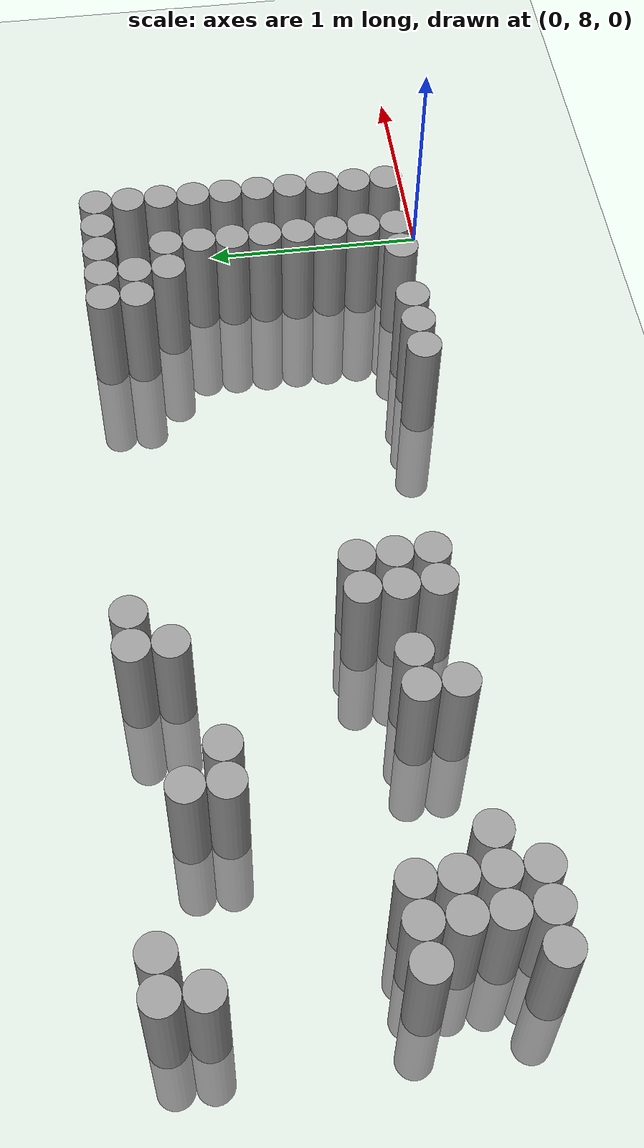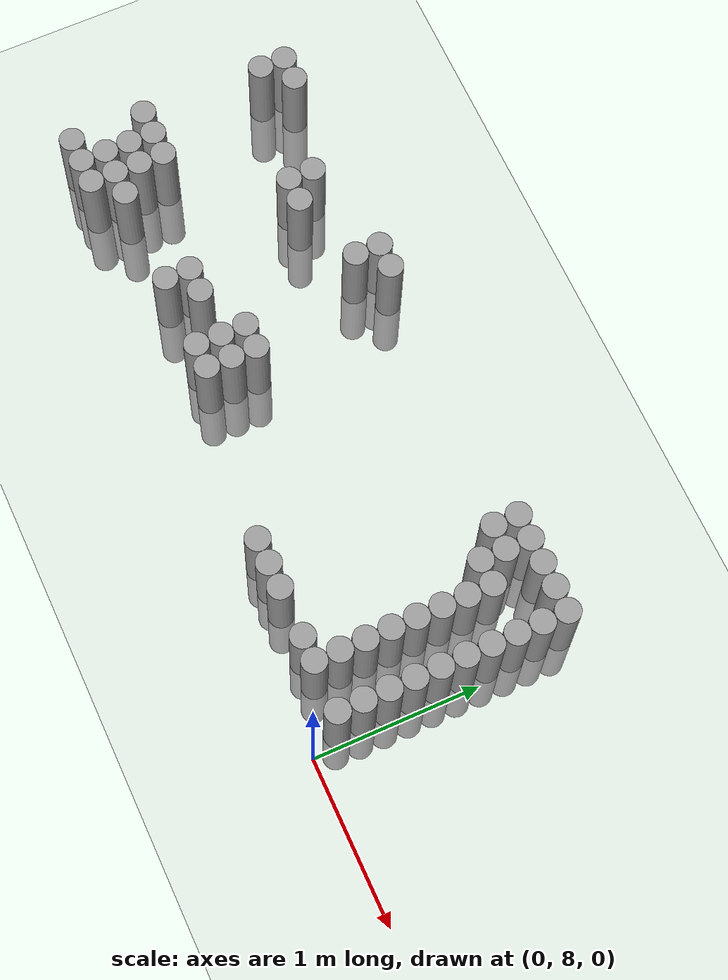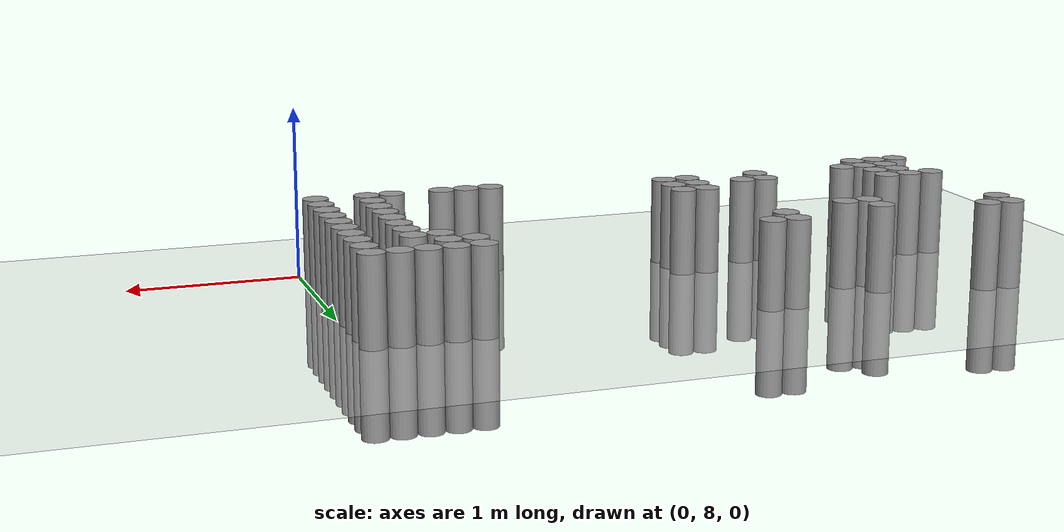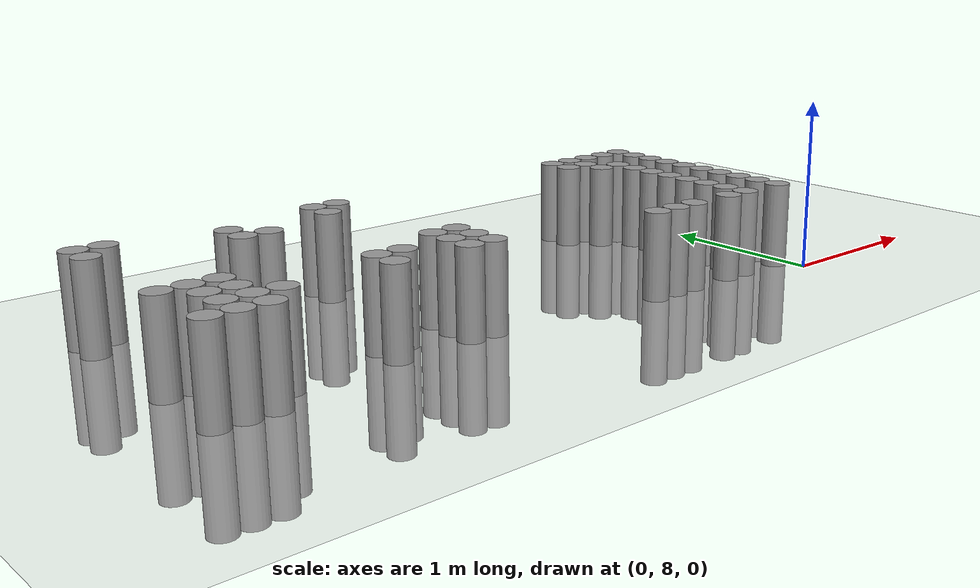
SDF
<sdf version="1.6">
 <world name="default">
  <model name="ground_plane">
   <static>1</static>
   <static>1</static>
   <link name="link">
    <collision name="collision">
     <geometry><plane><normal>0 0 1</normal><size>100 100</size></plane></geometry>
     <surface><friction><ode><mu>100</mu><mu2>50</mu2></ode></friction></surface>
    </collision>
    <visual name="visual">
     <cast_shadows>0</cast_shadows>
     <geometry><plane><normal>0 0 1</normal><size>100 100</size></plane></geometry>
     <material>
      <script><uri>file://media/materials/scripts/gazebo.material</uri><name>Gazebo/Grey</name></script>
     </material>
    </visual>
   </link>
  </model>
  <model name="unit_cylinder_160">
   <static>1</static>
   <pose>-3.825000 8.175000 0.000000 0.000000 0.000000 0.000000</pose>
   <link name="link">
    <inertial>
     <mass>1</mass>
     <inertia><ixx>0.145833</ixx><ixy>0</ixy><ixz>0</ixz><iyy>0.145833</iyy><iyz>0</iyz><izz>0.125</izz></inertia>
    </inertial>
    <collision name="collision">
     <geometry><cylinder><radius>0.075000</radius><length>1</length></cylinder></geometry>
    </collision>
    <visual name="visual">
     <geometry><cylinder><radius>0.075000</radius><length>1</length></cylinder></geometry>
     <material>
      <script><name>Gazebo/Grey</name><uri>file://media/materials/scripts/gazebo.material</uri></script>
     </material>
    </visual>
   </link>
  </model>
  <model name="unit_cylinder_161">
   <static>1</static>
   <pose>-3.825000 8.625000 0.000000 0.000000 0.000000 0.000000</pose>
   <link name="link">
    <inertial>
     <mass>1</mass>
     <inertia><ixx>0.145833</ixx><ixy>0</ixy><ixz>0</ixz><iyy>0.145833</iyy><iyz>0</iyz><izz>0.125</izz></inertia>
    </inertial>
    <collision name="collision">
     <geometry><cylinder><radius>0.075000</radius><length>1</length></cylinder></geometry>
    </collision>
    <visual name="visual">
     <geometry><cylinder><radius>0.075000</radius><length>1</length></cylinder></geometry>
     <material>
      <script><name>Gazebo/Grey</name><uri>file://media/materials/scripts/gazebo.material</uri></script>
     </material>
    </visual>
   </link>
  </model>
  <model name="unit_cylinder_162">
   <static>1</static>
   <pose>-3.825000 9.375000 0.000000 0.000000 0.000000 0.000000</pose>
   <link name="link">
    <inertial>
     <mass>1</mass>
     <inertia><ixx>0.145833</ixx><ixy>0</ixy><ixz>0</ixz><iyy>0.145833</iyy><iyz>0</iyz><izz>0.125</izz></inertia>
    </inertial>
    <collision name="collision">
     <geometry><cylinder><radius>0.075000</radius><length>1</length></cylinder></geometry>
    </collision>
    <visual name="visual">
     <geometry><cylinder><radius>0.075000</radius><length>1</length></cylinder></geometry>
     <material>
      <script><name>Gazebo/Grey</name><uri>file://media/materials/scripts/gazebo.material</uri></script>
     </material>
    </visual>
   </link>
  </model>
  <model name="unit_cylinder_163">
   <static>1</static>
   <pose>-3.825000 9.525000 0.000000 0.000000 0.000000 0.000000</pose>
   <link name="link">
    <inertial>
     <mass>1</mass>
     <inertia><ixx>0.145833</ixx><ixy>0</ixy><ixz>0</ixz><iyy>0.145833</iyy><iyz>0</iyz><izz>0.125</izz></inertia>
    </inertial>
    <collision name="collision">
     <geometry><cylinder><radius>0.075000</radius><length>1</length></cylinder></geometry>
    </collision>
    <visual name="visual">
     <geometry><cylinder><radius>0.075000</radius><length>1</length></cylinder></geometry>
     <material>
      <script><name>Gazebo/Grey</name><uri>file://media/materials/scripts/gazebo.material</uri></script>
     </material>
    </visual>
   </link>
  </model>
  <model name="unit_cylinder_166">
   <static>1</static>
   <pose>-3.675000 8.175000 0.000000 0.000000 0.000000 0.000000</pose>
   <link name="link">
    <inertial>
     <mass>1</mass>
     <inertia><ixx>0.145833</ixx><ixy>0</ixy><ixz>0</ixz><iyy>0.145833</iyy><iyz>0</iyz><izz>0.125</izz></inertia>
    </inertial>
    <collision name="collision">
     <geometry><cylinder><radius>0.075000</radius><length>1</length></cylinder></geometry>
    </collision>
    <visual name="visual">
     <geometry><cylinder><radius>0.075000</radius><length>1</length></cylinder></geometry>
     <material>
      <script><name>Gazebo/Grey</name><uri>file://media/materials/scripts/gazebo.material</uri></script>
     </material>
    </visual>
   </link>
  </model>
  <model name="unit_cylinder_167">
   <static>1</static>
   <pose>-3.675000 8.325000 0.000000 0.000000 0.000000 0.000000</pose>
   <link name="link">
    <inertial>
     <mass>1</mass>
     <inertia><ixx>0.145833</ixx><ixy>0</ixy><ixz>0</ixz><iyy>0.145833</iyy><iyz>0</iyz><izz>0.125</izz></inertia>
    </inertial>
    <collision name="collision">
     <geometry><cylinder><radius>0.075000</radius><length>1</length></cylinder></geometry>
    </collision>
    <visual name="visual">
     <geometry><cylinder><radius>0.075000</radius><length>1</length></cylinder></geometry>
     <material>
      <script><name>Gazebo/Grey</name><uri>file://media/materials/scripts/gazebo.material</uri></script>
     </material>
    </visual>
   </link>
  </model>
  <model name="unit_cylinder_168">
   <static>1</static>
   <pose>-3.675000 8.475000 0.000000 0.000000 0.000000 0.000000</pose>
   <link name="link">
    <inertial>
     <mass>1</mass>
     <inertia><ixx>0.145833</ixx><ixy>0</ixy><ixz>0</ixz><iyy>0.145833</iyy><iyz>0</iyz><izz>0.125</izz></inertia>
    </inertial>
    <collision name="collision">
     <geometry><cylinder><radius>0.075000</radius><length>1</length></cylinder></geometry>
    </collision>
    <visual name="visual">
     <geometry><cylinder><radius>0.075000</radius><length>1</length></cylinder></geometry>
     <material>
      <script><name>Gazebo/Grey</name><uri>file://media/materials/scripts/gazebo.material</uri></script>
     </material>
    </visual>
   </link>
  </model>
  <model name="unit_cylinder_169">
   <static>1</static>
   <pose>-3.675000 8.625000 0.000000 0.000000 0.000000 0.000000</pose>
   <link name="link">
    <inertial>
     <mass>1</mass>
     <inertia><ixx>0.145833</ixx><ixy>0</ixy><ixz>0</ixz><iyy>0.145833</iyy><iyz>0</iyz><izz>0.125</izz></inertia>
    </inertial>
    <collision name="collision">
     <geometry><cylinder><radius>0.075000</radius><length>1</length></cylinder></geometry>
    </collision>
    <visual name="visual">
     <geometry><cylinder><radius>0.075000</radius><length>1</length></cylinder></geometry>
     <material>
      <script><name>Gazebo/Grey</name><uri>file://media/materials/scripts/gazebo.material</uri></script>
     </material>
    </visual>
   </link>
  </model>
  <model name="unit_cylinder_170">
   <static>1</static>
   <pose>-3.675000 9.525000 0.000000 0.000000 0.000000 0.000000</pose>
   <link name="link">
    <inertial>
     <mass>1</mass>
     <inertia><ixx>0.145833</ixx><ixy>0</ixy><ixz>0</ixz><iyy>0.145833</iyy><iyz>0</iyz><izz>0.125</izz></inertia>
    </inertial>
    <collision name="collision">
     <geometry><cylinder><radius>0.075000</radius><length>1</length></cylinder></geometry>
    </collision>
    <visual name="visual">
     <geometry><cylinder><radius>0.075000</radius><length>1</length></cylinder></geometry>
     <material>
      <script><name>Gazebo/Grey</name><uri>file://media/materials/scripts/gazebo.material</uri></script>
     </material>
    </visual>
   </link>
  </model>
  <model name="unit_cylinder_173">
   <static>1</static>
   <pose>-3.525000 8.175000 0.000000 0.000000 0.000000 0.000000</pose>
   <link name="link">
    <inertial>
     <mass>1</mass>
     <inertia><ixx>0.145833</ixx><ixy>0</ixy><ixz>0</ixz><iyy>0.145833</iyy><iyz>0</iyz><izz>0.125</izz></inertia>
    </inertial>
    <collision name="collision">
     <geometry><cylinder><radius>0.075000</radius><length>1</length></cylinder></geometry>
    </collision>
    <visual name="visual">
     <geometry><cylinder><radius>0.075000</radius><length>1</length></cylinder></geometry>
     <material>
      <script><name>Gazebo/Grey</name><uri>file://media/materials/scripts/gazebo.material</uri></script>
     </material>
    </visual>
   </link>
  </model>
  <model name="unit_cylinder_174">
   <static>1</static>
   <pose>-3.525000 8.325000 0.000000 0.000000 0.000000 0.000000</pose>
   <link name="link">
    <inertial>
     <mass>1</mass>
     <inertia><ixx>0.145833</ixx><ixy>0</ixy><ixz>0</ixz><iyy>0.145833</iyy><iyz>0</iyz><izz>0.125</izz></inertia>
    </inertial>
    <collision name="collision">
     <geometry><cylinder><radius>0.075000</radius><length>1</length></cylinder></geometry>
    </collision>
    <visual name="visual">
     <geometry><cylinder><radius>0.075000</radius><length>1</length></cylinder></geometry>
     <material>
      <script><name>Gazebo/Grey</name><uri>file://media/materials/scripts/gazebo.material</uri></script>
     </material>
    </visual>
   </link>
  </model>
  <model name="unit_cylinder_175">
   <static>1</static>
   <pose>-3.525000 8.475000 0.000000 0.000000 0.000000 0.000000</pose>
   <link name="link">
    <inertial>
     <mass>1</mass>
     <inertia><ixx>0.145833</ixx><ixy>0</ixy><ixz>0</ixz><iyy>0.145833</iyy><iyz>0</iyz><izz>0.125</izz></inertia>
    </inertial>
    <collision name="collision">
     <geometry><cylinder><radius>0.075000</radius><length>1</length></cylinder></geometry>
    </collision>
    <visual name="visual">
     <geometry><cylinder><radius>0.075000</radius><length>1</length></cylinder></geometry>
     <material>
      <script><name>Gazebo/Grey</name><uri>file://media/materials/scripts/gazebo.material</uri></script>
     </material>
    </visual>
   </link>
  </model>
  <model name="unit_cylinder_176">
   <static>1</static>
   <pose>-3.525000 8.625000 0.000000 0.000000 0.000000 0.000000</pose>
   <link name="link">
    <inertial>
     <mass>1</mass>
     <inertia><ixx>0.145833</ixx><ixy>0</ixy><ixz>0</ixz><iyy>0.145833</iyy><iyz>0</iyz><izz>0.125</izz></inertia>
    </inertial>
    <collision name="collision">
     <geometry><cylinder><radius>0.075000</radius><length>1</length></cylinder></geometry>
    </collision>
    <visual name="visual">
     <geometry><cylinder><radius>0.075000</radius><length>1</length></cylinder></geometry>
     <material>
      <script><name>Gazebo/Grey</name><uri>file://media/materials/scripts/gazebo.material</uri></script>
     </material>
    </visual>
   </link>
  </model>
  <model name="unit_cylinder_177">
   <static>1</static>
   <pose>-3.375000 8.325000 0.000000 0.000000 0.000000 0.000000</pose>
   <link name="link">
    <inertial>
     <mass>1</mass>
     <inertia><ixx>0.145833</ixx><ixy>0</ixy><ixz>0</ixz><iyy>0.145833</iyy><iyz>0</iyz><izz>0.125</izz></inertia>
    </inertial>
    <collision name="collision">
     <geometry><cylinder><radius>0.075000</radius><length>1</length></cylinder></geometry>
    </collision>
    <visual name="visual">
     <geometry><cylinder><radius>0.075000</radius><length>1</length></cylinder></geometry>
     <material>
      <script><name>Gazebo/Grey</name><uri>file://media/materials/scripts/gazebo.material</uri></script>
     </material>
    </visual>
   </link>
  </model>
  <model name="unit_cylinder_178">
   <static>1</static>
   <pose>-3.075000 9.225000 0.000000 0.000000 0.000000 0.000000</pose>
   <link name="link">
    <inertial>
     <mass>1</mass>
     <inertia><ixx>0.145833</ixx><ixy>0</ixy><ixz>0</ixz><iyy>0.145833</iyy><iyz>0</iyz><izz>0.125</izz></inertia>
    </inertial>
    <collision name="collision">
     <geometry><cylinder><radius>0.075000</radius><length>1</length></cylinder></geometry>
    </collision>
    <visual name="visual">
     <geometry><cylinder><radius>0.075000</radius><length>1</length></cylinder></geometry>
     <material>
      <script><name>Gazebo/Grey</name><uri>file://media/materials/scripts/gazebo.material</uri></script>
     </material>
    </visual>
   </link>
  </model>
  <model name="unit_cylinder_179">
   <static>1</static>
   <pose>-3.075000 9.375000 0.000000 0.000000 0.000000 0.000000</pose>
   <link name="link">
    <inertial>
     <mass>1</mass>
     <inertia><ixx>0.145833</ixx><ixy>0</ixy><ixz>0</ixz><iyy>0.145833</iyy><iyz>0</iyz><izz>0.125</izz></inertia>
    </inertial>
    <collision name="collision">
     <geometry><cylinder><radius>0.075000</radius><length>1</length></cylinder></geometry>
    </collision>
    <visual name="visual">
     <geometry><cylinder><radius>0.075000</radius><length>1</length></cylinder></geometry>
     <material>
      <script><name>Gazebo/Grey</name><uri>file://media/materials/scripts/gazebo.material</uri></script>
     </material>
    </visual>
   </link>
  </model>
  <model name="unit_cylinder_180">
   <static>1</static>
   <pose>-2.925000 9.225000 0.000000 0.000000 0.000000 0.000000</pose>
   <link name="link">
    <inertial>
     <mass>1</mass>
     <inertia><ixx>0.145833</ixx><ixy>0</ixy><ixz>0</ixz><iyy>0.145833</iyy><iyz>0</iyz><izz>0.125</izz></inertia>
    </inertial>
    <collision name="collision">
     <geometry><cylinder><radius>0.075000</radius><length>1</length></cylinder></geometry>
    </collision>
    <visual name="visual">
     <geometry><cylinder><radius>0.075000</radius><length>1</length></cylinder></geometry>
     <material>
      <script><name>Gazebo/Grey</name><uri>file://media/materials/scripts/gazebo.material</uri></script>
     </material>
    </visual>
   </link>
  </model>
  <model name="unit_cylinder_181">
   <static>1</static>
   <pose>-2.775000 8.325000 0.000000 0.000000 0.000000 0.000000</pose>
   <link name="link">
    <inertial>
     <mass>1</mass>
     <inertia><ixx>0.145833</ixx><ixy>0</ixy><ixz>0</ixz><iyy>0.145833</iyy><iyz>0</iyz><izz>0.125</izz></inertia>
    </inertial>
    <collision name="collision">
     <geometry><cylinder><radius>0.075000</radius><length>1</length></cylinder></geometry>
    </collision>
    <visual name="visual">
     <geometry><cylinder><radius>0.075000</radius><length>1</length></cylinder></geometry>
     <material>
      <script><name>Gazebo/Grey</name><uri>file://media/materials/scripts/gazebo.material</uri></script>
     </material>
    </visual>
   </link>
  </model>
  <model name="unit_cylinder_182">
   <static>1</static>
   <pose>-2.775000 8.475000 0.000000 0.000000 0.000000 0.000000</pose>
   <link name="link">
    <inertial>
     <mass>1</mass>
     <inertia><ixx>0.145833</ixx><ixy>0</ixy><ixz>0</ixz><iyy>0.145833</iyy><iyz>0</iyz><izz>0.125</izz></inertia>
    </inertial>
    <collision name="collision">
     <geometry><cylinder><radius>0.075000</radius><length>1</length></cylinder></geometry>
    </collision>
    <visual name="visual">
     <geometry><cylinder><radius>0.075000</radius><length>1</length></cylinder></geometry>
     <material>
      <script><name>Gazebo/Grey</name><uri>file://media/materials/scripts/gazebo.material</uri></script>
     </material>
    </visual>
   </link>
  </model>
  <model name="unit_cylinder_183">
   <static>1</static>
   <pose>-2.625000 8.475000 0.000000 0.000000 0.000000 0.000000</pose>
   <link name="link">
    <inertial>
     <mass>1</mass>
     <inertia><ixx>0.145833</ixx><ixy>0</ixy><ixz>0</ixz><iyy>0.145833</iyy><iyz>0</iyz><izz>0.125</izz></inertia>
    </inertial>
    <collision name="collision">
     <geometry><cylinder><radius>0.075000</radius><length>1</length></cylinder></geometry>
    </collision>
    <visual name="visual">
     <geometry><cylinder><radius>0.075000</radius><length>1</length></cylinder></geometry>
     <material>
      <script><name>Gazebo/Grey</name><uri>file://media/materials/scripts/gazebo.material</uri></script>
     </material>
    </visual>
   </link>
  </model>
  <model name="unit_cylinder_184">
   <static>1</static>
   <pose>-2.475000 9.375000 0.000000 0.000000 0.000000 0.000000</pose>
   <link name="link">
    <inertial>
     <mass>1</mass>
     <inertia><ixx>0.145833</ixx><ixy>0</ixy><ixz>0</ixz><iyy>0.145833</iyy><iyz>0</iyz><izz>0.125</izz></inertia>
    </inertial>
    <collision name="collision">
     <geometry><cylinder><radius>0.075000</radius><length>1</length></cylinder></geometry>
    </collision>
    <visual name="visual">
     <geometry><cylinder><radius>0.075000</radius><length>1</length></cylinder></geometry>
     <material>
      <script><name>Gazebo/Grey</name><uri>file://media/materials/scripts/gazebo.material</uri></script>
     </material>
    </visual>
   </link>
  </model>
  <model name="unit_cylinder_185">
   <static>1</static>
   <pose>-2.475000 9.525000 0.000000 0.000000 0.000000 0.000000</pose>
   <link name="link">
    <inertial>
     <mass>1</mass>
     <inertia><ixx>0.145833</ixx><ixy>0</ixy><ixz>0</ixz><iyy>0.145833</iyy><iyz>0</iyz><izz>0.125</izz></inertia>
    </inertial>
    <collision name="collision">
     <geometry><cylinder><radius>0.075000</radius><length>1</length></cylinder></geometry>
    </collision>
    <visual name="visual">
     <geometry><cylinder><radius>0.075000</radius><length>1</length></cylinder></geometry>
     <material>
      <script><name>Gazebo/Grey</name><uri>file://media/materials/scripts/gazebo.material</uri></script>
     </material>
    </visual>
   </link>
  </model>
  <model name="unit_cylinder_186">
   <static>1</static>
   <pose>-2.325000 8.325000 0.000000 0.000000 0.000000 0.000000</pose>
   <link name="link">
    <inertial>
     <mass>1</mass>
     <inertia><ixx>0.145833</ixx><ixy>0</ixy><ixz>0</ixz><iyy>0.145833</iyy><iyz>0</iyz><izz>0.125</izz></inertia>
    </inertial>
    <collision name="collision">
     <geometry><cylinder><radius>0.075000</radius><length>1</length></cylinder></geometry>
    </collision>
    <visual name="visual">
     <geometry><cylinder><radius>0.075000</radius><length>1</length></cylinder></geometry>
     <material>
      <script><name>Gazebo/Grey</name><uri>file://media/materials/scripts/gazebo.material</uri></script>
     </material>
    </visual>
   </link>
  </model>
  <model name="unit_cylinder_187">
   <static>1</static>
   <pose>-2.325000 8.475000 0.000000 0.000000 0.000000 0.000000</pose>
   <link name="link">
    <inertial>
     <mass>1</mass>
     <inertia><ixx>0.145833</ixx><ixy>0</ixy><ixz>0</ixz><iyy>0.145833</iyy><iyz>0</iyz><izz>0.125</izz></inertia>
    </inertial>
    <collision name="collision">
     <geometry><cylinder><radius>0.075000</radius><length>1</length></cylinder></geometry>
    </collision>
    <visual name="visual">
     <geometry><cylinder><radius>0.075000</radius><length>1</length></cylinder></geometry>
     <material>
      <script><name>Gazebo/Grey</name><uri>file://media/materials/scripts/gazebo.material</uri></script>
     </material>
    </visual>
   </link>
  </model>
  <model name="unit_cylinder_188">
   <static>1</static>
   <pose>-2.325000 8.625000 0.000000 0.000000 0.000000 0.000000</pose>
   <link name="link">
    <inertial>
     <mass>1</mass>
     <inertia><ixx>0.145833</ixx><ixy>0</ixy><ixz>0</ixz><iyy>0.145833</iyy><iyz>0</iyz><izz>0.125</izz></inertia>
    </inertial>
    <collision name="collision">
     <geometry><cylinder><radius>0.075000</radius><length>1</length></cylinder></geometry>
    </collision>
    <visual name="visual">
     <geometry><cylinder><radius>0.075000</radius><length>1</length></cylinder></geometry>
     <material>
      <script><name>Gazebo/Grey</name><uri>file://media/materials/scripts/gazebo.material</uri></script>
     </material>
    </visual>
   </link>
  </model>
  <model name="unit_cylinder_189">
   <static>1</static>
   <pose>-2.325000 9.525000 0.000000 0.000000 0.000000 0.000000</pose>
   <link name="link">
    <inertial>
     <mass>1</mass>
     <inertia><ixx>0.145833</ixx><ixy>0</ixy><ixz>0</ixz><iyy>0.145833</iyy><iyz>0</iyz><izz>0.125</izz></inertia>
    </inertial>
    <collision name="collision">
     <geometry><cylinder><radius>0.075000</radius><length>1</length></cylinder></geometry>
    </collision>
    <visual name="visual">
     <geometry><cylinder><radius>0.075000</radius><length>1</length></cylinder></geometry>
     <material>
      <script><name>Gazebo/Grey</name><uri>file://media/materials/scripts/gazebo.material</uri></script>
     </material>
    </visual>
   </link>
  </model>
  <model name="unit_cylinder_190">
   <static>1</static>
   <pose>-2.175000 8.325000 0.000000 0.000000 0.000000 0.000000</pose>
   <link name="link">
    <inertial>
     <mass>1</mass>
     <inertia><ixx>0.145833</ixx><ixy>0</ixy><ixz>0</ixz><iyy>0.145833</iyy><iyz>0</iyz><izz>0.125</izz></inertia>
    </inertial>
    <collision name="collision">
     <geometry><cylinder><radius>0.075000</radius><length>1</length></cylinder></geometry>
    </collision>
    <visual name="visual">
     <geometry><cylinder><radius>0.075000</radius><length>1</length></cylinder></geometry>
     <material>
      <script><name>Gazebo/Grey</name><uri>file://media/materials/scripts/gazebo.material</uri></script>
     </material>
    </visual>
   </link>
  </model>
  <model name="unit_cylinder_191">
   <static>1</static>
   <pose>-2.175000 8.475000 0.000000 0.000000 0.000000 0.000000</pose>
   <link name="link">
    <inertial>
     <mass>1</mass>
     <inertia><ixx>0.145833</ixx><ixy>0</ixy><ixz>0</ixz><iyy>0.145833</iyy><iyz>0</iyz><izz>0.125</izz></inertia>
    </inertial>
    <collision name="collision">
     <geometry><cylinder><radius>0.075000</radius><length>1</length></cylinder></geometry>
    </collision>
    <visual name="visual">
     <geometry><cylinder><radius>0.075000</radius><length>1</length></cylinder></geometry>
     <material>
      <script><name>Gazebo/Grey</name><uri>file://media/materials/scripts/gazebo.material</uri></script>
     </material>
    </visual>
   </link>
  </model>
  <model name="unit_cylinder_192">
   <static>1</static>
   <pose>-2.175000 8.625000 0.000000 0.000000 0.000000 0.000000</pose>
   <link name="link">
    <inertial>
     <mass>1</mass>
     <inertia><ixx>0.145833</ixx><ixy>0</ixy><ixz>0</ixz><iyy>0.145833</iyy><iyz>0</iyz><izz>0.125</izz></inertia>
    </inertial>
    <collision name="collision">
     <geometry><cylinder><radius>0.075000</radius><length>1</length></cylinder></geometry>
    </collision>
    <visual name="visual">
     <geometry><cylinder><radius>0.075000</radius><length>1</length></cylinder></geometry>
     <material>
      <script><name>Gazebo/Grey</name><uri>file://media/materials/scripts/gazebo.material</uri></script>
     </material>
    </visual>
   </link>
  </model>
  <model name="unit_cylinder_211">
   <static>1</static>
   <pose>-1.125000 8.175000 0.000000 0.000000 0.000000 0.000000</pose>
   <link name="link">
    <inertial>
     <mass>1</mass>
     <inertia><ixx>0.145833</ixx><ixy>0</ixy><ixz>0</ixz><iyy>0.145833</iyy><iyz>0</iyz><izz>0.125</izz></inertia>
    </inertial>
    <collision name="collision">
     <geometry><cylinder><radius>0.075000</radius><length>1</length></cylinder></geometry>
    </collision>
    <visual name="visual">
     <geometry><cylinder><radius>0.075000</radius><length>1</length></cylinder></geometry>
     <material>
      <script><name>Gazebo/Grey</name><uri>file://media/materials/scripts/gazebo.material</uri></script>
     </material>
    </visual>
   </link>
  </model>
  <model name="unit_cylinder_215">
   <static>1</static>
   <pose>-0.975000 8.175000 0.000000 0.000000 0.000000 0.000000</pose>
   <link name="link">
    <inertial>
     <mass>1</mass>
     <inertia><ixx>0.145833</ixx><ixy>0</ixy><ixz>0</ixz><iyy>0.145833</iyy><iyz>0</iyz><izz>0.125</izz></inertia>
    </inertial>
    <collision name="collision">
     <geometry><cylinder><radius>0.075000</radius><length>1</length></cylinder></geometry>
    </collision>
    <visual name="visual">
     <geometry><cylinder><radius>0.075000</radius><length>1</length></cylinder></geometry>
     <material>
      <script><name>Gazebo/Grey</name><uri>file://media/materials/scripts/gazebo.material</uri></script>
     </material>
    </visual>
   </link>
  </model>
  <model name="unit_cylinder_218">
   <static>1</static>
   <pose>-0.825000 8.175000 0.000000 0.000000 0.000000 0.000000</pose>
   <link name="link">
    <inertial>
     <mass>1</mass>
     <inertia><ixx>0.145833</ixx><ixy>0</ixy><ixz>0</ixz><iyy>0.145833</iyy><iyz>0</iyz><izz>0.125</izz></inertia>
    </inertial>
    <collision name="collision">
     <geometry><cylinder><radius>0.075000</radius><length>1</length></cylinder></geometry>
    </collision>
    <visual name="visual">
     <geometry><cylinder><radius>0.075000</radius><length>1</length></cylinder></geometry>
     <material>
      <script><name>Gazebo/Grey</name><uri>file://media/materials/scripts/gazebo.material</uri></script>
     </material>
    </visual>
   </link>
  </model>
  <model name="unit_cylinder_222">
   <static>1</static>
   <pose>-0.675000 9.375000 0.000000 0.000000 0.000000 0.000000</pose>
   <link name="link">
    <inertial>
     <mass>1</mass>
     <inertia><ixx>0.145833</ixx><ixy>0</ixy><ixz>0</ixz><iyy>0.145833</iyy><iyz>0</iyz><izz>0.125</izz></inertia>
    </inertial>
    <collision name="collision">
     <geometry><cylinder><radius>0.075000</radius><length>1</length></cylinder></geometry>
    </collision>
    <visual name="visual">
     <geometry><cylinder><radius>0.075000</radius><length>1</length></cylinder></geometry>
     <material>
      <script><name>Gazebo/Grey</name><uri>file://media/materials/scripts/gazebo.material</uri></script>
     </material>
    </visual>
   </link>
  </model>
  <model name="unit_cylinder_223">
   <static>1</static>
   <pose>-0.675000 9.525000 0.000000 0.000000 0.000000 0.000000</pose>
   <link name="link">
    <inertial>
     <mass>1</mass>
     <inertia><ixx>0.145833</ixx><ixy>0</ixy><ixz>0</ixz><iyy>0.145833</iyy><iyz>0</iyz><izz>0.125</izz></inertia>
    </inertial>
    <collision name="collision">
     <geometry><cylinder><radius>0.075000</radius><length>1</length></cylinder></geometry>
    </collision>
    <visual name="visual">
     <geometry><cylinder><radius>0.075000</radius><length>1</length></cylinder></geometry>
     <material>
      <script><name>Gazebo/Grey</name><uri>file://media/materials/scripts/gazebo.material</uri></script>
     </material>
    </visual>
   </link>
  </model>
  <model name="unit_cylinder_231">
   <static>1</static>
   <pose>-0.525000 8.175000 0.000000 0.000000 0.000000 0.000000</pose>
   <link name="link">
    <inertial>
     <mass>1</mass>
     <inertia><ixx>0.145833</ixx><ixy>0</ixy><ixz>0</ixz><iyy>0.145833</iyy><iyz>0</iyz><izz>0.125</izz></inertia>
    </inertial>
    <collision name="collision">
     <geometry><cylinder><radius>0.075000</radius><length>1</length></cylinder></geometry>
    </collision>
    <visual name="visual">
     <geometry><cylinder><radius>0.075000</radius><length>1</length></cylinder></geometry>
     <material>
      <script><name>Gazebo/Grey</name><uri>file://media/materials/scripts/gazebo.material</uri></script>
     </material>
    </visual>
   </link>
  </model>
  <model name="unit_cylinder_232">
   <static>1</static>
   <pose>-0.525000 9.225000 0.000000 0.000000 0.000000 0.000000</pose>
   <link name="link">
    <inertial>
     <mass>1</mass>
     <inertia><ixx>0.145833</ixx><ixy>0</ixy><ixz>0</ixz><iyy>0.145833</iyy><iyz>0</iyz><izz>0.125</izz></inertia>
    </inertial>
    <collision name="collision">
     <geometry><cylinder><radius>0.075000</radius><length>1</length></cylinder></geometry>
    </collision>
    <visual name="visual">
     <geometry><cylinder><radius>0.075000</radius><length>1</length></cylinder></geometry>
     <material>
      <script><name>Gazebo/Grey</name><uri>file://media/materials/scripts/gazebo.material</uri></script>
     </material>
    </visual>
   </link>
  </model>
  <model name="unit_cylinder_233">
   <static>1</static>
   <pose>-0.525000 9.375000 0.000000 0.000000 0.000000 0.000000</pose>
   <link name="link">
    <inertial>
     <mass>1</mass>
     <inertia><ixx>0.145833</ixx><ixy>0</ixy><ixz>0</ixz><iyy>0.145833</iyy><iyz>0</iyz><izz>0.125</izz></inertia>
    </inertial>
    <collision name="collision">
     <geometry><cylinder><radius>0.075000</radius><length>1</length></cylinder></geometry>
    </collision>
    <visual name="visual">
     <geometry><cylinder><radius>0.075000</radius><length>1</length></cylinder></geometry>
     <material>
      <script><name>Gazebo/Grey</name><uri>file://media/materials/scripts/gazebo.material</uri></script>
     </material>
    </visual>
   </link>
  </model>
  <model name="unit_cylinder_234">
   <static>1</static>
   <pose>-0.525000 9.525000 0.000000 0.000000 0.000000 0.000000</pose>
   <link name="link">
    <inertial>
     <mass>1</mass>
     <inertia><ixx>0.145833</ixx><ixy>0</ixy><ixz>0</ixz><iyy>0.145833</iyy><iyz>0</iyz><izz>0.125</izz></inertia>
    </inertial>
    <collision name="collision">
     <geometry><cylinder><radius>0.075000</radius><length>1</length></cylinder></geometry>
    </collision>
    <visual name="visual">
     <geometry><cylinder><radius>0.075000</radius><length>1</length></cylinder></geometry>
     <material>
      <script><name>Gazebo/Grey</name><uri>file://media/materials/scripts/gazebo.material</uri></script>
     </material>
    </visual>
   </link>
  </model>
  <model name="unit_cylinder_242">
   <static>1</static>
   <pose>-0.375000 8.175000 0.000000 0.000000 0.000000 0.000000</pose>
   <link name="link">
    <inertial>
     <mass>1</mass>
     <inertia><ixx>0.145833</ixx><ixy>0</ixy><ixz>0</ixz><iyy>0.145833</iyy><iyz>0</iyz><izz>0.125</izz></inertia>
    </inertial>
    <collision name="collision">
     <geometry><cylinder><radius>0.075000</radius><length>1</length></cylinder></geometry>
    </collision>
    <visual name="visual">
     <geometry><cylinder><radius>0.075000</radius><length>1</length></cylinder></geometry>
     <material>
      <script><name>Gazebo/Grey</name><uri>file://media/materials/scripts/gazebo.material</uri></script>
     </material>
    </visual>
   </link>
  </model>
  <model name="unit_cylinder_243">
   <static>1</static>
   <pose>-0.375000 8.325000 0.000000 0.000000 0.000000 0.000000</pose>
   <link name="link">
    <inertial>
     <mass>1</mass>
     <inertia><ixx>0.145833</ixx><ixy>0</ixy><ixz>0</ixz><iyy>0.145833</iyy><iyz>0</iyz><izz>0.125</izz></inertia>
    </inertial>
    <collision name="collision">
     <geometry><cylinder><radius>0.075000</radius><length>1</length></cylinder></geometry>
    </collision>
    <visual name="visual">
     <geometry><cylinder><radius>0.075000</radius><length>1</length></cylinder></geometry>
     <material>
      <script><name>Gazebo/Grey</name><uri>file://media/materials/scripts/gazebo.material</uri></script>
     </material>
    </visual>
   </link>
  </model>
  <model name="unit_cylinder_244">
   <static>1</static>
   <pose>-0.375000 8.475000 0.000000 0.000000 0.000000 0.000000</pose>
   <link name="link">
    <inertial>
     <mass>1</mass>
     <inertia><ixx>0.145833</ixx><ixy>0</ixy><ixz>0</ixz><iyy>0.145833</iyy><iyz>0</iyz><izz>0.125</izz></inertia>
    </inertial>
    <collision name="collision">
     <geometry><cylinder><radius>0.075000</radius><length>1</length></cylinder></geometry>
    </collision>
    <visual name="visual">
     <geometry><cylinder><radius>0.075000</radius><length>1</length></cylinder></geometry>
     <material>
      <script><name>Gazebo/Grey</name><uri>file://media/materials/scripts/gazebo.material</uri></script>
     </material>
    </visual>
   </link>
  </model>
  <model name="unit_cylinder_245">
   <static>1</static>
   <pose>-0.375000 8.625000 0.000000 0.000000 0.000000 0.000000</pose>
   <link name="link">
    <inertial>
     <mass>1</mass>
     <inertia><ixx>0.145833</ixx><ixy>0</ixy><ixz>0</ixz><iyy>0.145833</iyy><iyz>0</iyz><izz>0.125</izz></inertia>
    </inertial>
    <collision name="collision">
     <geometry><cylinder><radius>0.075000</radius><length>1</length></cylinder></geometry>
    </collision>
    <visual name="visual">
     <geometry><cylinder><radius>0.075000</radius><length>1</length></cylinder></geometry>
     <material>
      <script><name>Gazebo/Grey</name><uri>file://media/materials/scripts/gazebo.material</uri></script>
     </material>
    </visual>
   </link>
  </model>
  <model name="unit_cylinder_246">
   <static>1</static>
   <pose>-0.375000 8.775000 0.000000 0.000000 0.000000 0.000000</pose>
   <link name="link">
    <inertial>
     <mass>1</mass>
     <inertia><ixx>0.145833</ixx><ixy>0</ixy><ixz>0</ixz><iyy>0.145833</iyy><iyz>0</iyz><izz>0.125</izz></inertia>
    </inertial>
    <collision name="collision">
     <geometry><cylinder><radius>0.075000</radius><length>1</length></cylinder></geometry>
    </collision>
    <visual name="visual">
     <geometry><cylinder><radius>0.075000</radius><length>1</length></cylinder></geometry>
     <material>
      <script><name>Gazebo/Grey</name><uri>file://media/materials/scripts/gazebo.material</uri></script>
     </material>
    </visual>
   </link>
  </model>
  <model name="unit_cylinder_247">
   <static>1</static>
   <pose>-0.375000 8.925000 0.000000 0.000000 0.000000 0.000000</pose>
   <link name="link">
    <inertial>
     <mass>1</mass>
     <inertia><ixx>0.145833</ixx><ixy>0</ixy><ixz>0</ixz><iyy>0.145833</iyy><iyz>0</iyz><izz>0.125</izz></inertia>
    </inertial>
    <collision name="collision">
     <geometry><cylinder><radius>0.075000</radius><length>1</length></cylinder></geometry>
    </collision>
    <visual name="visual">
     <geometry><cylinder><radius>0.075000</radius><length>1</length></cylinder></geometry>
     <material>
      <script><name>Gazebo/Grey</name><uri>file://media/materials/scripts/gazebo.material</uri></script>
     </material>
    </visual>
   </link>
  </model>
  <model name="unit_cylinder_248">
   <static>1</static>
   <pose>-0.375000 9.075000 0.000000 0.000000 0.000000 0.000000</pose>
   <link name="link">
    <inertial>
     <mass>1</mass>
     <inertia><ixx>0.145833</ixx><ixy>0</ixy><ixz>0</ixz><iyy>0.145833</iyy><iyz>0</iyz><izz>0.125</izz></inertia>
    </inertial>
    <collision name="collision">
     <geometry><cylinder><radius>0.075000</radius><length>1</length></cylinder></geometry>
    </collision>
    <visual name="visual">
     <geometry><cylinder><radius>0.075000</radius><length>1</length></cylinder></geometry>
     <material>
      <script><name>Gazebo/Grey</name><uri>file://media/materials/scripts/gazebo.material</uri></script>
     </material>
    </visual>
   </link>
  </model>
  <model name="unit_cylinder_249">
   <static>1</static>
   <pose>-0.375000 9.225000 0.000000 0.000000 0.000000 0.000000</pose>
   <link name="link">
    <inertial>
     <mass>1</mass>
     <inertia><ixx>0.145833</ixx><ixy>0</ixy><ixz>0</ixz><iyy>0.145833</iyy><iyz>0</iyz><izz>0.125</izz></inertia>
    </inertial>
    <collision name="collision">
     <geometry><cylinder><radius>0.075000</radius><length>1</length></cylinder></geometry>
    </collision>
    <visual name="visual">
     <geometry><cylinder><radius>0.075000</radius><length>1</length></cylinder></geometry>
     <material>
      <script><name>Gazebo/Grey</name><uri>file://media/materials/scripts/gazebo.material</uri></script>
     </material>
    </visual>
   </link>
  </model>
  <model name="unit_cylinder_250">
   <static>1</static>
   <pose>-0.375000 9.525000 0.000000 0.000000 0.000000 0.000000</pose>
   <link name="link">
    <inertial>
     <mass>1</mass>
     <inertia><ixx>0.145833</ixx><ixy>0</ixy><ixz>0</ixz><iyy>0.145833</iyy><iyz>0</iyz><izz>0.125</izz></inertia>
    </inertial>
    <collision name="collision">
     <geometry><cylinder><radius>0.075000</radius><length>1</length></cylinder></geometry>
    </collision>
    <visual name="visual">
     <geometry><cylinder><radius>0.075000</radius><length>1</length></cylinder></geometry>
     <material>
      <script><name>Gazebo/Grey</name><uri>file://media/materials/scripts/gazebo.material</uri></script>
     </material>
    </visual>
   </link>
  </model>
  <model name="unit_cylinder_260">
   <static>1</static>
   <pose>-0.225000 9.525000 0.000000 0.000000 0.000000 0.000000</pose>
   <link name="link">
    <inertial>
     <mass>1</mass>
     <inertia><ixx>0.145833</ixx><ixy>0</ixy><ixz>0</ixz><iyy>0.145833</iyy><iyz>0</iyz><izz>0.125</izz></inertia>
    </inertial>
    <collision name="collision">
     <geometry><cylinder><radius>0.075000</radius><length>1</length></cylinder></geometry>
    </collision>
    <visual name="visual">
     <geometry><cylinder><radius>0.075000</radius><length>1</length></cylinder></geometry>
     <material>
      <script><name>Gazebo/Grey</name><uri>file://media/materials/scripts/gazebo.material</uri></script>
     </material>
    </visual>
   </link>
  </model>
  <model name="unit_cylinder_281">
   <static>1</static>
   <pose>-0.075000 8.175000 0.000000 0.000000 0.000000 0.000000</pose>
   <link name="link">
    <inertial>
     <mass>1</mass>
     <inertia><ixx>0.145833</ixx><ixy>0</ixy><ixz>0</ixz><iyy>0.145833</iyy><iyz>0</iyz><izz>0.125</izz></inertia>
    </inertial>
    <collision name="collision">
     <geometry><cylinder><radius>0.075000</radius><length>1</length></cylinder></geometry>
    </collision>
    <visual name="visual">
     <geometry><cylinder><radius>0.075000</radius><length>1</length></cylinder></geometry>
     <material>
      <script><name>Gazebo/Grey</name><uri>file://media/materials/scripts/gazebo.material</uri></script>
     </material>
    </visual>
   </link>
  </model>
  <model name="unit_cylinder_282">
   <static>1</static>
   <pose>-0.075000 8.325000 0.000000 0.000000 0.000000 0.000000</pose>
   <link name="link">
    <inertial>
     <mass>1</mass>
     <inertia><ixx>0.145833</ixx><ixy>0</ixy><ixz>0</ixz><iyy>0.145833</iyy><iyz>0</iyz><izz>0.125</izz></inertia>
    </inertial>
    <collision name="collision">
     <geometry><cylinder><radius>0.075000</radius><length>1</length></cylinder></geometry>
    </collision>
    <visual name="visual">
     <geometry><cylinder><radius>0.075000</radius><length>1</length></cylinder></geometry>
     <material>
      <script><name>Gazebo/Grey</name><uri>file://media/materials/scripts/gazebo.material</uri></script>
     </material>
    </visual>
   </link>
  </model>
  <model name="unit_cylinder_283">
   <static>1</static>
   <pose>-0.075000 8.475000 0.000000 0.000000 0.000000 0.000000</pose>
   <link name="link">
    <inertial>
     <mass>1</mass>
     <inertia><ixx>0.145833</ixx><ixy>0</ixy><ixz>0</ixz><iyy>0.145833</iyy><iyz>0</iyz><izz>0.125</izz></inertia>
    </inertial>
    <collision name="collision">
     <geometry><cylinder><radius>0.075000</radius><length>1</length></cylinder></geometry>
    </collision>
    <visual name="visual">
     <geometry><cylinder><radius>0.075000</radius><length>1</length></cylinder></geometry>
     <material>
      <script><name>Gazebo/Grey</name><uri>file://media/materials/scripts/gazebo.material</uri></script>
     </material>
    </visual>
   </link>
  </model>
  <model name="unit_cylinder_284">
   <static>1</static>
   <pose>-0.075000 8.625000 0.000000 0.000000 0.000000 0.000000</pose>
   <link name="link">
    <inertial>
     <mass>1</mass>
     <inertia><ixx>0.145833</ixx><ixy>0</ixy><ixz>0</ixz><iyy>0.145833</iyy><iyz>0</iyz><izz>0.125</izz></inertia>
    </inertial>
    <collision name="collision">
     <geometry><cylinder><radius>0.075000</radius><length>1</length></cylinder></geometry>
    </collision>
    <visual name="visual">
     <geometry><cylinder><radius>0.075000</radius><length>1</length></cylinder></geometry>
     <material>
      <script><name>Gazebo/Grey</name><uri>file://media/materials/scripts/gazebo.material</uri></script>
     </material>
    </visual>
   </link>
  </model>
  <model name="unit_cylinder_285">
   <static>1</static>
   <pose>-0.075000 8.775000 0.000000 0.000000 0.000000 0.000000</pose>
   <link name="link">
    <inertial>
     <mass>1</mass>
     <inertia><ixx>0.145833</ixx><ixy>0</ixy><ixz>0</ixz><iyy>0.145833</iyy><iyz>0</iyz><izz>0.125</izz></inertia>
    </inertial>
    <collision name="collision">
     <geometry><cylinder><radius>0.075000</radius><length>1</length></cylinder></geometry>
    </collision>
    <visual name="visual">
     <geometry><cylinder><radius>0.075000</radius><length>1</length></cylinder></geometry>
     <material>
      <script><name>Gazebo/Grey</name><uri>file://media/materials/scripts/gazebo.material</uri></script>
     </material>
    </visual>
   </link>
  </model>
  <model name="unit_cylinder_286">
   <static>1</static>
   <pose>-0.075000 8.925000 0.000000 0.000000 0.000000 0.000000</pose>
   <link name="link">
    <inertial>
     <mass>1</mass>
     <inertia><ixx>0.145833</ixx><ixy>0</ixy><ixz>0</ixz><iyy>0.145833</iyy><iyz>0</iyz><izz>0.125</izz></inertia>
    </inertial>
    <collision name="collision">
     <geometry><cylinder><radius>0.075000</radius><length>1</length></cylinder></geometry>
    </collision>
    <visual name="visual">
     <geometry><cylinder><radius>0.075000</radius><length>1</length></cylinder></geometry>
     <material>
      <script><name>Gazebo/Grey</name><uri>file://media/materials/scripts/gazebo.material</uri></script>
     </material>
    </visual>
   </link>
  </model>
  <model name="unit_cylinder_287">
   <static>1</static>
   <pose>-0.075000 9.075000 0.000000 0.000000 0.000000 0.000000</pose>
   <link name="link">
    <inertial>
     <mass>1</mass>
     <inertia><ixx>0.145833</ixx><ixy>0</ixy><ixz>0</ixz><iyy>0.145833</iyy><iyz>0</iyz><izz>0.125</izz></inertia>
    </inertial>
    <collision name="collision">
     <geometry><cylinder><radius>0.075000</radius><length>1</length></cylinder></geometry>
    </collision>
    <visual name="visual">
     <geometry><cylinder><radius>0.075000</radius><length>1</length></cylinder></geometry>
     <material>
      <script><name>Gazebo/Grey</name><uri>file://media/materials/scripts/gazebo.material</uri></script>
     </material>
    </visual>
   </link>
  </model>
  <model name="unit_cylinder_288">
   <static>1</static>
   <pose>-0.075000 9.225000 0.000000 0.000000 0.000000 0.000000</pose>
   <link name="link">
    <inertial>
     <mass>1</mass>
     <inertia><ixx>0.145833</ixx><ixy>0</ixy><ixz>0</ixz><iyy>0.145833</iyy><iyz>0</iyz><izz>0.125</izz></inertia>
    </inertial>
    <collision name="collision">
     <geometry><cylinder><radius>0.075000</radius><length>1</length></cylinder></geometry>
    </collision>
    <visual name="visual">
     <geometry><cylinder><radius>0.075000</radius><length>1</length></cylinder></geometry>
     <material>
      <script><name>Gazebo/Grey</name><uri>file://media/materials/scripts/gazebo.material</uri></script>
     </material>
    </visual>
   </link>
  </model>
  <model name="unit_cylinder_289">
   <static>1</static>
   <pose>-0.075000 9.375000 0.000000 0.000000 0.000000 0.000000</pose>
   <link name="link">
    <inertial>
     <mass>1</mass>
     <inertia><ixx>0.145833</ixx><ixy>0</ixy><ixz>0</ixz><iyy>0.145833</iyy><iyz>0</iyz><izz>0.125</izz></inertia>
    </inertial>
    <collision name="collision">
     <geometry><cylinder><radius>0.075000</radius><length>1</length></cylinder></geometry>
    </collision>
    <visual name="visual">
     <geometry><cylinder><radius>0.075000</radius><length>1</length></cylinder></geometry>
     <material>
      <script><name>Gazebo/Grey</name><uri>file://media/materials/scripts/gazebo.material</uri></script>
     </material>
    </visual>
   </link>
  </model>
  <model name="unit_cylinder_290">
   <static>1</static>
   <pose>-0.075000 9.525000 0.000000 0.000000 0.000000 0.000000</pose>
   <link name="link">
    <inertial>
     <mass>1</mass>
     <inertia><ixx>0.145833</ixx><ixy>0</ixy><ixz>0</ixz><iyy>0.145833</iyy><iyz>0</iyz><izz>0.125</izz></inertia>
    </inertial>
    <collision name="collision">
     <geometry><cylinder><radius>0.075000</radius><length>1</length></cylinder></geometry>
    </collision>
    <visual name="visual">
     <geometry><cylinder><radius>0.075000</radius><length>1</length></cylinder></geometry>
     <material>
      <script><name>Gazebo/Grey</name><uri>file://media/materials/scripts/gazebo.material</uri></script>
     </material>
    </visual>
   </link>
  </model>
 </world>
</sdf>
